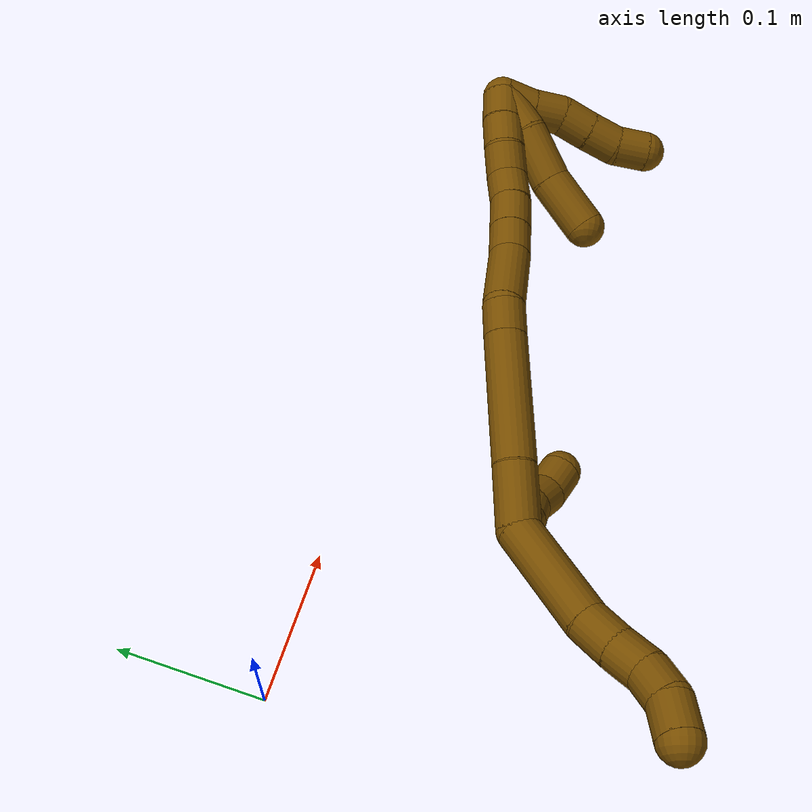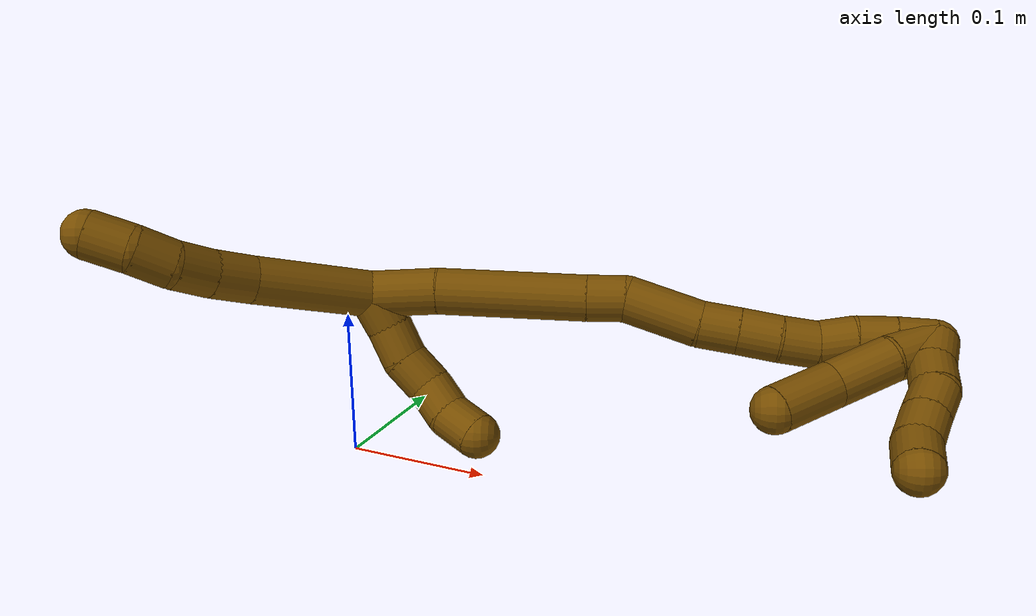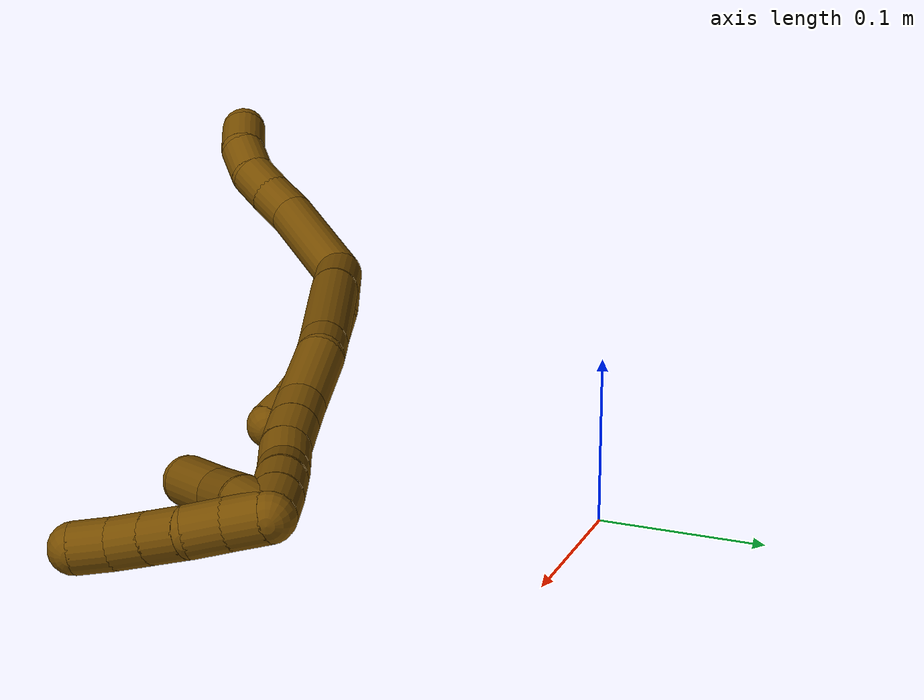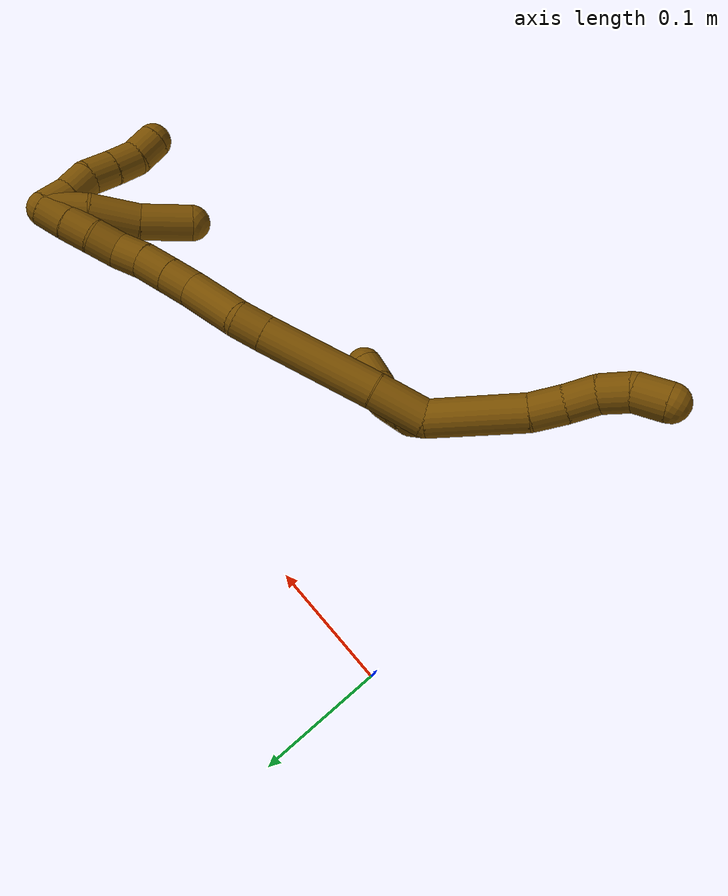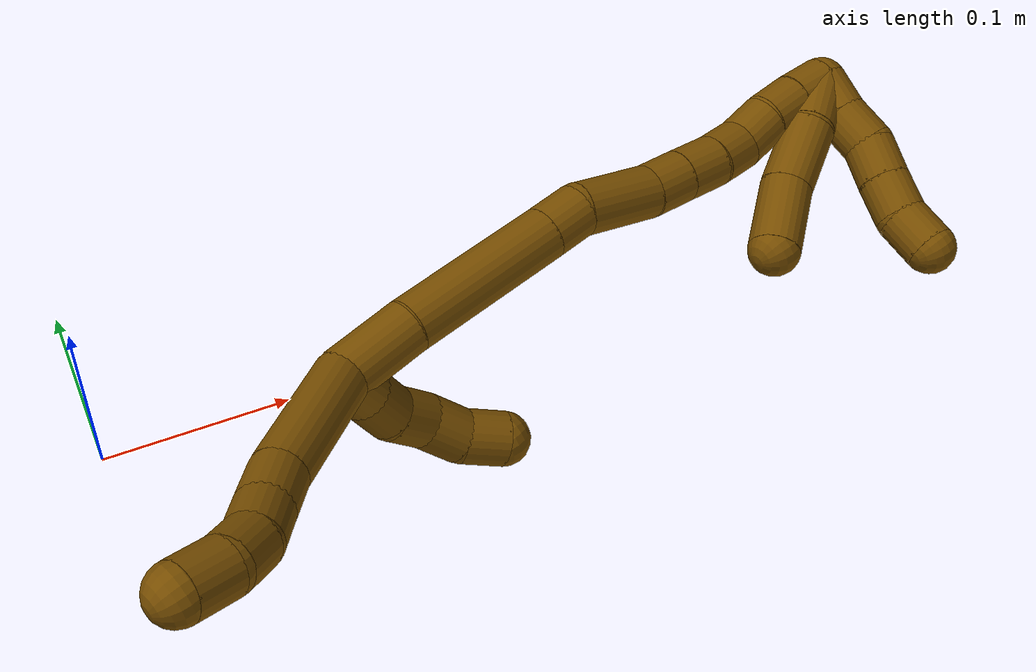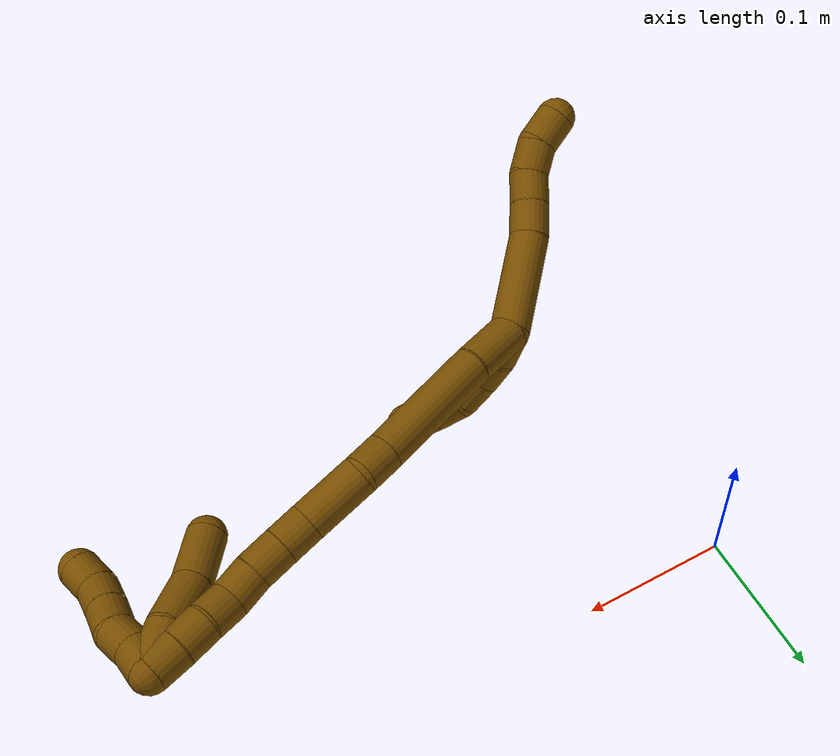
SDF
<sdf version="1.7">
 <world name="default">
  <model name="12">
   <static>0</static>
   <link name="12">
    <collision name="collision-cylinder-e_1_2_8">
     <pose>0.014696 -0.010496 -0.026914 2.76974 0.470593 1.81104</pose>
     <geometry><cylinder><radius>0.0125</radius><length>0.064822</length></cylinder></geometry>
     <surface>
      <friction><ode><mu>1.16</mu><mu2>1.16</mu2><slip1>0</slip1><slip2>0</slip2></ode></friction>
      <contact><ode><kp>1e+06</kp><kd>1</kd><max_vel>0</max_vel><min_depth>0.001</min_depth></ode></contact>
     </surface>
    </collision>
    <visual name="visual-cylinder-e_1_2_8">
     <pose>0.014696 -0.010496 -0.026914 2.76974 0.470593 1.81104</pose>
     <geometry><cylinder><radius>0.0125</radius><length>0.064822</length></cylinder></geometry>
     <material><ambient>0.466667 0.301961 0 1</ambient></material>
    </visual>
    <collision name="collision-cylinder-e_2_8_9">
     <pose>0.035781 -0.025451 -0.061843 2.63392 0.60842 1.7604</pose>
     <geometry><cylinder><radius>0.0125</radius><length>0.022357</length></cylinder></geometry>
     <surface>
      <friction><ode><mu>1.16</mu><mu2>1.16</mu2><slip1>0</slip1><slip2>0</slip2></ode></friction>
      <contact><ode><kp>1e+06</kp><kd>1</kd><max_vel>0</max_vel><min_depth>0.001</min_depth></ode></contact>
     </surface>
    </collision>
    <visual name="visual-cylinder-e_2_8_9">
     <pose>0.035781 -0.025451 -0.061843 2.63392 0.60842 1.7604</pose>
     <geometry><cylinder><radius>0.0125</radius><length>0.022357</length></cylinder></geometry>
     <material><ambient>0.466667 0.301961 0 1</ambient></material>
    </visual>
    <collision name="collision-cylinder-e_3_9_10">
     <pose>0.048049 -0.034836 -0.076683 2.51645 0.609713 1.54414</pose>
     <geometry><cylinder><radius>0.0125</radius><length>0.020532</length></cylinder></geometry>
     <surface>
      <friction><ode><mu>1.16</mu><mu2>1.16</mu2><slip1>0</slip1><slip2>0</slip2></ode></friction>
      <contact><ode><kp>1e+06</kp><kd>1</kd><max_vel>0</max_vel><min_depth>0.001</min_depth></ode></contact>
     </surface>
    </collision>
    <visual name="visual-cylinder-e_3_9_10">
     <pose>0.048049 -0.034836 -0.076683 2.51645 0.609713 1.54414</pose>
     <geometry><cylinder><radius>0.0125</radius><length>0.020532</length></cylinder></geometry>
     <material><ambient>0.466667 0.301961 0 1</ambient></material>
    </visual>
    <collision name="collision-cylinder-e_4_10_11">
     <pose>0.057189 -0.045197 -0.091564 2.548 0.323862 0.981192</pose>
     <geometry><cylinder><radius>0.0125</radius><length>0.020503</length></cylinder></geometry>
     <surface>
      <friction><ode><mu>1.16</mu><mu2>1.16</mu2><slip1>0</slip1><slip2>0</slip2></ode></friction>
      <contact><ode><kp>1e+06</kp><kd>1</kd><max_vel>0</max_vel><min_depth>0.001</min_depth></ode></contact>
     </surface>
    </collision>
    <visual name="visual-cylinder-e_4_10_11">
     <pose>0.057189 -0.045197 -0.091564 2.548 0.323862 0.981192</pose>
     <geometry><cylinder><radius>0.0125</radius><length>0.020503</length></cylinder></geometry>
     <material><ambient>0.466667 0.301961 0 1</ambient></material>
    </visual>
    <collision name="collision-cylinder-e_5_11_6">
     <pose>0.061038 -0.054553 -0.109766 2.77292 0.0538 0.286633</pose>
     <geometry><cylinder><radius>0.0125</radius><length>0.021786</length></cylinder></geometry>
     <surface>
      <friction><ode><mu>1.16</mu><mu2>1.16</mu2><slip1>0</slip1><slip2>0</slip2></ode></friction>
      <contact><ode><kp>1e+06</kp><kd>1</kd><max_vel>0</max_vel><min_depth>0.001</min_depth></ode></contact>
     </surface>
    </collision>
    <visual name="visual-cylinder-e_5_11_6">
     <pose>0.061038 -0.054553 -0.109766 2.77292 0.0538 0.286633</pose>
     <geometry><cylinder><radius>0.0125</radius><length>0.021786</length></cylinder></geometry>
     <material><ambient>0.466667 0.301961 0 1</ambient></material>
    </visual>
    <collision name="collision-cylinder-e_1_2_12">
     <pose>0.001584 0.008772 0.004533 -1.09387 0.15902 -0.096955</pose>
     <geometry><cylinder><radius>0.0125</radius><length>0.02</length></cylinder></geometry>
     <surface>
      <friction><ode><mu>1.16</mu><mu2>1.16</mu2><slip1>0</slip1><slip2>0</slip2></ode></friction>
      <contact><ode><kp>1e+06</kp><kd>1</kd><max_vel>0</max_vel><min_depth>0.001</min_depth></ode></contact>
     </surface>
    </collision>
    <visual name="visual-cylinder-e_1_2_12">
     <pose>0.001584 0.008772 0.004533 -1.09387 0.15902 -0.096955</pose>
     <geometry><cylinder><radius>0.0125</radius><length>0.02</length></cylinder></geometry>
     <material><ambient>0.466667 0.301961 0 1</ambient></material>
    </visual>
    <collision name="collision-cylinder-e_2_12_13">
     <pose>0.006631 0.02586 0.013407 -1.08962 0.353773 -0.215804</pose>
     <geometry><cylinder><radius>0.0125</radius><length>0.02</length></cylinder></geometry>
     <surface>
      <friction><ode><mu>1.16</mu><mu2>1.16</mu2><slip1>0</slip1><slip2>0</slip2></ode></friction>
      <contact><ode><kp>1e+06</kp><kd>1</kd><max_vel>0</max_vel><min_depth>0.001</min_depth></ode></contact>
     </surface>
    </collision>
    <visual name="visual-cylinder-e_2_12_13">
     <pose>0.006631 0.02586 0.013407 -1.08962 0.353773 -0.215804</pose>
     <geometry><cylinder><radius>0.0125</radius><length>0.02</length></cylinder></geometry>
     <material><ambient>0.466667 0.301961 0 1</ambient></material>
    </visual>
    <collision name="collision-cylinder-e_3_13_14">
     <pose>0.013108 0.040752 0.024653 -0.761056 0.306018 -0.123223</pose>
     <geometry><cylinder><radius>0.0125</radius><length>0.02</length></cylinder></geometry>
     <surface>
      <friction><ode><mu>1.16</mu><mu2>1.16</mu2><slip1>0</slip1><slip2>0</slip2></ode></friction>
      <contact><ode><kp>1e+06</kp><kd>1</kd><max_vel>0</max_vel><min_depth>0.001</min_depth></ode></contact>
     </surface>
    </collision>
    <visual name="visual-cylinder-e_3_13_14">
     <pose>0.013108 0.040752 0.024653 -0.761056 0.306018 -0.123223</pose>
     <geometry><cylinder><radius>0.0125</radius><length>0.02</length></cylinder></geometry>
     <material><ambient>0.466667 0.301961 0 1</ambient></material>
    </visual>
    <collision name="collision-cylinder-e_4_14_15">
     <pose>0.022053 0.052743 0.037515 -0.73771 0.635072 -0.252729</pose>
     <geometry><cylinder><radius>0.0125</radius><length>0.02</length></cylinder></geometry>
     <surface>
      <friction><ode><mu>1.16</mu><mu2>1.16</mu2><slip1>0</slip1><slip2>0</slip2></ode></friction>
      <contact><ode><kp>1e+06</kp><kd>1</kd><max_vel>0</max_vel><min_depth>0.001</min_depth></ode></contact>
     </surface>
    </collision>
    <visual name="visual-cylinder-e_4_14_15">
     <pose>0.022053 0.052743 0.037515 -0.73771 0.635072 -0.252729</pose>
     <geometry><cylinder><radius>0.0125</radius><length>0.02</length></cylinder></geometry>
     <material><ambient>0.466667 0.301961 0 1</ambient></material>
    </visual>
    <collision name="collision-cylinder-e_5_15_5">
     <pose>0.033356 0.060914 0.051445 -0.332914 0.566894 -0.097802</pose>
     <geometry><cylinder><radius>0.0125</radius><length>0.02</length></cylinder></geometry>
     <surface>
      <friction><ode><mu>1.16</mu><mu2>1.16</mu2><slip1>0</slip1><slip2>0</slip2></ode></friction>
      <contact><ode><kp>1e+06</kp><kd>1</kd><max_vel>0</max_vel><min_depth>0.001</min_depth></ode></contact>
     </surface>
    </collision>
    <visual name="visual-cylinder-e_5_15_5">
     <pose>0.033356 0.060914 0.051445 -0.332914 0.566894 -0.097802</pose>
     <geometry><cylinder><radius>0.0125</radius><length>0.02</length></cylinder></geometry>
     <material><ambient>0.466667 0.301961 0 1</ambient></material>
    </visual>
    <collision name="collision-cylinder-e_1_2_16">
     <pose>-0.000698 -0.00072 0.018196 0.039533 -0.038332 -0.000758</pose>
     <geometry><cylinder><radius>0.0125</radius><length>0.036447</length></cylinder></geometry>
     <surface>
      <friction><ode><mu>1.16</mu><mu2>1.16</mu2><slip1>0</slip1><slip2>0</slip2></ode></friction>
      <contact><ode><kp>1e+06</kp><kd>1</kd><max_vel>0</max_vel><min_depth>0.001</min_depth></ode></contact>
     </surface>
    </collision>
    <visual name="visual-cylinder-e_1_2_16">
     <pose>-0.000698 -0.00072 0.018196 0.039533 -0.038332 -0.000758</pose>
     <geometry><cylinder><radius>0.0125</radius><length>0.036447</length></cylinder></geometry>
     <material><ambient>0.466667 0.301961 0 1</ambient></material>
    </visual>
    <collision name="collision-cylinder-e_2_16_17">
     <pose>-0.002436 0.000692 0.076222 -0.053456 -0.026059 0.000697</pose>
     <geometry><cylinder><radius>0.0125</radius><length>0.079802</length></cylinder></geometry>
     <surface>
      <friction><ode><mu>1.16</mu><mu2>1.16</mu2><slip1>0</slip1><slip2>0</slip2></ode></friction>
      <contact><ode><kp>1e+06</kp><kd>1</kd><max_vel>0</max_vel><min_depth>0.001</min_depth></ode></contact>
     </surface>
    </collision>
    <visual name="visual-cylinder-e_2_16_17">
     <pose>-0.002436 0.000692 0.076222 -0.053456 -0.026059 0.000697</pose>
     <geometry><cylinder><radius>0.0125</radius><length>0.079802</length></cylinder></geometry>
     <material><ambient>0.466667 0.301961 0 1</ambient></material>
    </visual>
    <collision name="collision-cylinder-e_3_17_18">
     <pose>-0.003667 0.002937 0.126375 -0.011079 -0.018475 0.000102</pose>
     <geometry><cylinder><radius>0.0125</radius><length>0.02065</length></cylinder></geometry>
     <surface>
      <friction><ode><mu>1.16</mu><mu2>1.16</mu2><slip1>0</slip1><slip2>0</slip2></ode></friction>
      <contact><ode><kp>1e+06</kp><kd>1</kd><max_vel>0</max_vel><min_depth>0.001</min_depth></ode></contact>
     </surface>
    </collision>
    <visual name="visual-cylinder-e_3_17_18">
     <pose>-0.003667 0.002937 0.126375 -0.011079 -0.018475 0.000102</pose>
     <geometry><cylinder><radius>0.0125</radius><length>0.02065</length></cylinder></geometry>
     <material><ambient>0.466667 0.301961 0 1</ambient></material>
    </visual>
    <collision name="collision-cylinder-e_4_18_19">
     <pose>-0.000571 0.008683 0.156028 -0.283453 0.161785 -0.023133</pose>
     <geometry><cylinder><radius>0.0125</radius><length>0.040802</length></cylinder></geometry>
     <surface>
      <friction><ode><mu>1.16</mu><mu2>1.16</mu2><slip1>0</slip1><slip2>0</slip2></ode></friction>
      <contact><ode><kp>1e+06</kp><kd>1</kd><max_vel>0</max_vel><min_depth>0.001</min_depth></ode></contact>
     </surface>
    </collision>
    <visual name="visual-cylinder-e_4_18_19">
     <pose>-0.000571 0.008683 0.156028 -0.283453 0.161785 -0.023133</pose>
     <geometry><cylinder><radius>0.0125</radius><length>0.040802</length></cylinder></geometry>
     <material><ambient>0.466667 0.301961 0 1</ambient></material>
    </visual>
    <collision name="collision-cylinder-e_5_19_20">
     <pose>0.003453 0.015829 0.185453 -0.14898 0.072239 -0.005393</pose>
     <geometry><cylinder><radius>0.0125</radius><length>0.020468</length></cylinder></geometry>
     <surface>
      <friction><ode><mu>1.16</mu><mu2>1.16</mu2><slip1>0</slip1><slip2>0</slip2></ode></friction>
      <contact><ode><kp>1e+06</kp><kd>1</kd><max_vel>0</max_vel><min_depth>0.001</min_depth></ode></contact>
     </surface>
    </collision>
    <visual name="visual-cylinder-e_5_19_20">
     <pose>0.003453 0.015829 0.185453 -0.14898 0.072239 -0.005393</pose>
     <geometry><cylinder><radius>0.0125</radius><length>0.020468</length></cylinder></geometry>
     <material><ambient>0.466667 0.301961 0 1</ambient></material>
    </visual>
    <collision name="collision-cylinder-e_6_20_21">
     <pose>0.004989 0.019115 0.206172 -0.165194 0.073858 -0.006117</pose>
     <geometry><cylinder><radius>0.0125</radius><length>0.021602</length></cylinder></geometry>
     <surface>
      <friction><ode><mu>1.16</mu><mu2>1.16</mu2><slip1>0</slip1><slip2>0</slip2></ode></friction>
      <contact><ode><kp>1e+06</kp><kd>1</kd><max_vel>0</max_vel><min_depth>0.001</min_depth></ode></contact>
     </surface>
    </collision>
    <visual name="visual-cylinder-e_6_20_21">
     <pose>0.004989 0.019115 0.206172 -0.165194 0.073858 -0.006117</pose>
     <geometry><cylinder><radius>0.0125</radius><length>0.021602</length></cylinder></geometry>
     <material><ambient>0.466667 0.301961 0 1</ambient></material>
    </visual>
    <collision name="collision-cylinder-e_7_21_22">
     <pose>0.005277 0.022692 0.226671 -0.180858 -0.050707 0.004599</pose>
     <geometry><cylinder><radius>0.0125</radius><length>0.020101</length></cylinder></geometry>
     <surface>
      <friction><ode><mu>1.16</mu><mu2>1.16</mu2><slip1>0</slip1><slip2>0</slip2></ode></friction>
      <contact><ode><kp>1e+06</kp><kd>1</kd><max_vel>0</max_vel><min_depth>0.001</min_depth></ode></contact>
     </surface>
    </collision>
    <visual name="visual-cylinder-e_7_21_22">
     <pose>0.005277 0.022692 0.226671 -0.180858 -0.050707 0.004599</pose>
     <geometry><cylinder><radius>0.0125</radius><length>0.020101</length></cylinder></geometry>
     <material><ambient>0.466667 0.301961 0 1</ambient></material>
    </visual>
    <collision name="collision-cylinder-e_8_22_23">
     <pose>0.003937 0.023184 0.246448 0.131824 -0.082955 -0.005479</pose>
     <geometry><cylinder><radius>0.0125</radius><length>0.020049</length></cylinder></geometry>
     <surface>
      <friction><ode><mu>1.16</mu><mu2>1.16</mu2><slip1>0</slip1><slip2>0</slip2></ode></friction>
      <contact><ode><kp>1e+06</kp><kd>1</kd><max_vel>0</max_vel><min_depth>0.001</min_depth></ode></contact>
     </surface>
    </collision>
    <visual name="visual-cylinder-e_8_22_23">
     <pose>0.003937 0.023184 0.246448 0.131824 -0.082955 -0.005479</pose>
     <geometry><cylinder><radius>0.0125</radius><length>0.020049</length></cylinder></geometry>
     <material><ambient>0.466667 0.301961 0 1</ambient></material>
    </visual>
    <collision name="collision-cylinder-e_9_23_24">
     <pose>0.002861 0.022116 0.266352 -0.024515 -0.024484 0.0003</pose>
     <geometry><cylinder><radius>0.0125</radius><length>0.020013</length></cylinder></geometry>
     <surface>
      <friction><ode><mu>1.16</mu><mu2>1.16</mu2><slip1>0</slip1><slip2>0</slip2></ode></friction>
      <contact><ode><kp>1e+06</kp><kd>1</kd><max_vel>0</max_vel><min_depth>0.001</min_depth></ode></contact>
     </surface>
    </collision>
    <visual name="visual-cylinder-e_9_23_24">
     <pose>0.002861 0.022116 0.266352 -0.024515 -0.024484 0.0003</pose>
     <geometry><cylinder><radius>0.0125</radius><length>0.020013</length></cylinder></geometry>
     <material><ambient>0.466667 0.301961 0 1</ambient></material>
    </visual>
    <collision name="collision-cylinder-e_10_24_1">
     <pose>0.003022 0.022875 0.286365 -0.051255 0.040503 -0.001038</pose>
     <geometry><cylinder><radius>0.0125</radius><length>0.020067</length></cylinder></geometry>
     <surface>
      <friction><ode><mu>1.16</mu><mu2>1.16</mu2><slip1>0</slip1><slip2>0</slip2></ode></friction>
      <contact><ode><kp>1e+06</kp><kd>1</kd><max_vel>0</max_vel><min_depth>0.001</min_depth></ode></contact>
     </surface>
    </collision>
    <visual name="visual-cylinder-e_10_24_1">
     <pose>0.003022 0.022875 0.286365 -0.051255 0.040503 -0.001038</pose>
     <geometry><cylinder><radius>0.0125</radius><length>0.020067</length></cylinder></geometry>
     <material><ambient>0.466667 0.301961 0 1</ambient></material>
    </visual>
    <collision name="collision-cylinder-e_1_1_25">
     <pose>0.012941 0.025378 0.29402 -2.4408 1.25724 -2.20995</pose>
     <geometry><cylinder><radius>0.0125</radius><length>0.02</length></cylinder></geometry>
     <surface>
      <friction><ode><mu>1.16</mu><mu2>1.16</mu2><slip1>0</slip1><slip2>0</slip2></ode></friction>
      <contact><ode><kp>1e+06</kp><kd>1</kd><max_vel>0</max_vel><min_depth>0.001</min_depth></ode></contact>
     </surface>
    </collision>
    <visual name="visual-cylinder-e_1_1_25">
     <pose>0.012941 0.025378 0.29402 -2.4408 1.25724 -2.20995</pose>
     <geometry><cylinder><radius>0.0125</radius><length>0.02</length></cylinder></geometry>
     <material><ambient>0.466667 0.301961 0 1</ambient></material>
    </visual>
    <collision name="collision-cylinder-e_2_25_26">
     <pose>0.032319 0.028871 0.291017 -1.97614 1.40634 -1.8199</pose>
     <geometry><cylinder><radius>0.0125</radius><length>0.02</length></cylinder></geometry>
     <surface>
      <friction><ode><mu>1.16</mu><mu2>1.16</mu2><slip1>0</slip1><slip2>0</slip2></ode></friction>
      <contact><ode><kp>1e+06</kp><kd>1</kd><max_vel>0</max_vel><min_depth>0.001</min_depth></ode></contact>
     </surface>
    </collision>
    <visual name="visual-cylinder-e_2_25_26">
     <pose>0.032319 0.028871 0.291017 -1.97614 1.40634 -1.8199</pose>
     <geometry><cylinder><radius>0.0125</radius><length>0.02</length></cylinder></geometry>
     <material><ambient>0.466667 0.301961 0 1</ambient></material>
    </visual>
    <collision name="collision-cylinder-e_3_26_27">
     <pose>0.051163 0.032576 0.286558 -2.61833 1.11496 -2.33025</pose>
     <geometry><cylinder><radius>0.0125</radius><length>0.02</length></cylinder></geometry>
     <surface>
      <friction><ode><mu>1.16</mu><mu2>1.16</mu2><slip1>0</slip1><slip2>0</slip2></ode></friction>
      <contact><ode><kp>1e+06</kp><kd>1</kd><max_vel>0</max_vel><min_depth>0.001</min_depth></ode></contact>
     </surface>
    </collision>
    <visual name="visual-cylinder-e_3_26_27">
     <pose>0.051163 0.032576 0.286558 -2.61833 1.11496 -2.33025</pose>
     <geometry><cylinder><radius>0.0125</radius><length>0.02</length></cylinder></geometry>
     <material><ambient>0.466667 0.301961 0 1</ambient></material>
    </visual>
    <collision name="collision-cylinder-e_4_27_28">
     <pose>0.0693 0.036862 0.279315 -2.59489 1.15772 -2.33108</pose>
     <geometry><cylinder><radius>0.0125</radius><length>0.02</length></cylinder></geometry>
     <surface>
      <friction><ode><mu>1.16</mu><mu2>1.16</mu2><slip1>0</slip1><slip2>0</slip2></ode></friction>
      <contact><ode><kp>1e+06</kp><kd>1</kd><max_vel>0</max_vel><min_depth>0.001</min_depth></ode></contact>
     </surface>
    </collision>
    <visual name="visual-cylinder-e_4_27_28">
     <pose>0.0693 0.036862 0.279315 -2.59489 1.15772 -2.33108</pose>
     <geometry><cylinder><radius>0.0125</radius><length>0.02</length></cylinder></geometry>
     <material><ambient>0.466667 0.301961 0 1</ambient></material>
    </visual>
    <collision name="collision-cylinder-e_5_28_4">
     <pose>0.088375 0.039714 0.274838 -2.5115 1.44071 -2.43052</pose>
     <geometry><cylinder><radius>0.0125</radius><length>0.02</length></cylinder></geometry>
     <surface>
      <friction><ode><mu>1.16</mu><mu2>1.16</mu2><slip1>0</slip1><slip2>0</slip2></ode></friction>
      <contact><ode><kp>1e+06</kp><kd>1</kd><max_vel>0</max_vel><min_depth>0.001</min_depth></ode></contact>
     </surface>
    </collision>
    <visual name="visual-cylinder-e_5_28_4">
     <pose>0.088375 0.039714 0.274838 -2.5115 1.44071 -2.43052</pose>
     <geometry><cylinder><radius>0.0125</radius><length>0.02</length></cylinder></geometry>
     <material><ambient>0.466667 0.301961 0 1</ambient></material>
    </visual>
    <collision name="collision-cylinder-e_1_1_29">
     <pose>0.011032 0.024216 0.283985 -3.07498 0.549319 -2.90621</pose>
     <geometry><cylinder><radius>0.0125</radius><length>0.029125</length></cylinder></geometry>
     <surface>
      <friction><ode><mu>1.16</mu><mu2>1.16</mu2><slip1>0</slip1><slip2>0</slip2></ode></friction>
      <contact><ode><kp>1e+06</kp><kd>1</kd><max_vel>0</max_vel><min_depth>0.001</min_depth></ode></contact>
     </surface>
    </collision>
    <visual name="visual-cylinder-e_1_1_29">
     <pose>0.011032 0.024216 0.283985 -3.07498 0.549319 -2.90621</pose>
     <geometry><cylinder><radius>0.0125</radius><length>0.029125</length></cylinder></geometry>
     <material><ambient>0.466667 0.301961 0 1</ambient></material>
    </visual>
    <collision name="collision-cylinder-e_2_29_30">
     <pose>0.026357 0.028646 0.25632 -2.90989 0.457343 -2.21428</pose>
     <geometry><cylinder><radius>0.0125</radius><length>0.034978</length></cylinder></geometry>
     <surface>
      <friction><ode><mu>1.16</mu><mu2>1.16</mu2><slip1>0</slip1><slip2>0</slip2></ode></friction>
      <contact><ode><kp>1e+06</kp><kd>1</kd><max_vel>0</max_vel><min_depth>0.001</min_depth></ode></contact>
     </surface>
    </collision>
    <visual name="visual-cylinder-e_2_29_30">
     <pose>0.026357 0.028646 0.25632 -2.90989 0.457343 -2.21428</pose>
     <geometry><cylinder><radius>0.0125</radius><length>0.034978</length></cylinder></geometry>
     <material><ambient>0.466667 0.301961 0 1</ambient></material>
    </visual>
    <collision name="collision-cylinder-e_3_30_3">
     <pose>0.044343 0.033835 0.226409 -3.03367 0.608723 -2.801</pose>
     <geometry><cylinder><radius>0.0125</radius><length>0.035897</length></cylinder></geometry>
     <surface>
      <friction><ode><mu>1.16</mu><mu2>1.16</mu2><slip1>0</slip1><slip2>0</slip2></ode></friction>
      <contact><ode><kp>1e+06</kp><kd>1</kd><max_vel>0</max_vel><min_depth>0.001</min_depth></ode></contact>
     </surface>
    </collision>
    <visual name="visual-cylinder-e_3_30_3">
     <pose>0.044343 0.033835 0.226409 -3.03367 0.608723 -2.801</pose>
     <geometry><cylinder><radius>0.0125</radius><length>0.035897</length></cylinder></geometry>
     <material><ambient>0.466667 0.301961 0 1</ambient></material>
    </visual>
    <collision name="collision-sphere-3">
     <pose>0.054607 0.035421 0.21177 0 -0 0</pose>
     <geometry><sphere><radius>0.0125</radius></sphere></geometry>
     <surface>
      <friction><ode><mu>1.16</mu><mu2>1.16</mu2><slip1>0</slip1><slip2>0</slip2></ode></friction>
      <contact><ode><kp>1e+06</kp><kd>1</kd><max_vel>0</max_vel><min_depth>0.001</min_depth></ode></contact>
     </surface>
    </collision>
    <visual name="visual-sphere-3">
     <pose>0.054607 0.035421 0.21177 0 -0 0</pose>
     <geometry><sphere><radius>0.0125</radius></sphere></geometry>
     <material><ambient>0.466667 0.301961 0 1</ambient></material>
    </visual>
    <collision name="collision-sphere-30">
     <pose>0.03408 0.032249 0.241048 0 -0 0</pose>
     <geometry><sphere><radius>0.0125</radius></sphere></geometry>
     <surface>
      <friction><ode><mu>1.16</mu><mu2>1.16</mu2><slip1>0</slip1><slip2>0</slip2></ode></friction>
      <contact><ode><kp>1e+06</kp><kd>1</kd><max_vel>0</max_vel><min_depth>0.001</min_depth></ode></contact>
     </surface>
    </collision>
    <visual name="visual-sphere-30">
     <pose>0.03408 0.032249 0.241048 0 -0 0</pose>
     <geometry><sphere><radius>0.0125</radius></sphere></geometry>
     <material><ambient>0.466667 0.301961 0 1</ambient></material>
    </visual>
    <collision name="collision-sphere-29">
     <pose>0.018635 0.025042 0.271592 0 -0 0</pose>
     <geometry><sphere><radius>0.0125</radius></sphere></geometry>
     <surface>
      <friction><ode><mu>1.16</mu><mu2>1.16</mu2><slip1>0</slip1><slip2>0</slip2></ode></friction>
      <contact><ode><kp>1e+06</kp><kd>1</kd><max_vel>0</max_vel><min_depth>0.001</min_depth></ode></contact>
     </surface>
    </collision>
    <visual name="visual-sphere-29">
     <pose>0.018635 0.025042 0.271592 0 -0 0</pose>
     <geometry><sphere><radius>0.0125</radius></sphere></geometry>
     <material><ambient>0.466667 0.301961 0 1</ambient></material>
    </visual>
    <collision name="collision-sphere-4">
     <pose>0.09829 0.040478 0.27379 0 -0 0</pose>
     <geometry><sphere><radius>0.0125</radius></sphere></geometry>
     <surface>
      <friction><ode><mu>1.16</mu><mu2>1.16</mu2><slip1>0</slip1><slip2>0</slip2></ode></friction>
      <contact><ode><kp>1e+06</kp><kd>1</kd><max_vel>0</max_vel><min_depth>0.001</min_depth></ode></contact>
     </surface>
    </collision>
    <visual name="visual-sphere-4">
     <pose>0.09829 0.040478 0.27379 0 -0 0</pose>
     <geometry><sphere><radius>0.0125</radius></sphere></geometry>
     <material><ambient>0.466667 0.301961 0 1</ambient></material>
    </visual>
    <collision name="collision-sphere-28">
     <pose>0.078459 0.038949 0.275886 0 -0 0</pose>
     <geometry><sphere><radius>0.0125</radius></sphere></geometry>
     <surface>
      <friction><ode><mu>1.16</mu><mu2>1.16</mu2><slip1>0</slip1><slip2>0</slip2></ode></friction>
      <contact><ode><kp>1e+06</kp><kd>1</kd><max_vel>0</max_vel><min_depth>0.001</min_depth></ode></contact>
     </surface>
    </collision>
    <visual name="visual-sphere-28">
     <pose>0.078459 0.038949 0.275886 0 -0 0</pose>
     <geometry><sphere><radius>0.0125</radius></sphere></geometry>
     <material><ambient>0.466667 0.301961 0 1</ambient></material>
    </visual>
    <collision name="collision-sphere-27">
     <pose>0.060141 0.034775 0.282745 0 -0 0</pose>
     <geometry><sphere><radius>0.0125</radius></sphere></geometry>
     <surface>
      <friction><ode><mu>1.16</mu><mu2>1.16</mu2><slip1>0</slip1><slip2>0</slip2></ode></friction>
      <contact><ode><kp>1e+06</kp><kd>1</kd><max_vel>0</max_vel><min_depth>0.001</min_depth></ode></contact>
     </surface>
    </collision>
    <visual name="visual-sphere-27">
     <pose>0.060141 0.034775 0.282745 0 -0 0</pose>
     <geometry><sphere><radius>0.0125</radius></sphere></geometry>
     <material><ambient>0.466667 0.301961 0 1</ambient></material>
    </visual>
    <collision name="collision-sphere-26">
     <pose>0.042184 0.030376 0.290371 0 -0 0</pose>
     <geometry><sphere><radius>0.0125</radius></sphere></geometry>
     <surface>
      <friction><ode><mu>1.16</mu><mu2>1.16</mu2><slip1>0</slip1><slip2>0</slip2></ode></friction>
      <contact><ode><kp>1e+06</kp><kd>1</kd><max_vel>0</max_vel><min_depth>0.001</min_depth></ode></contact>
     </surface>
    </collision>
    <visual name="visual-sphere-26">
     <pose>0.042184 0.030376 0.290371 0 -0 0</pose>
     <geometry><sphere><radius>0.0125</radius></sphere></geometry>
     <material><ambient>0.466667 0.301961 0 1</ambient></material>
    </visual>
    <collision name="collision-sphere-25">
     <pose>0.022453 0.027367 0.291662 0 -0 0</pose>
     <geometry><sphere><radius>0.0125</radius></sphere></geometry>
     <surface>
      <friction><ode><mu>1.16</mu><mu2>1.16</mu2><slip1>0</slip1><slip2>0</slip2></ode></friction>
      <contact><ode><kp>1e+06</kp><kd>1</kd><max_vel>0</max_vel><min_depth>0.001</min_depth></ode></contact>
     </surface>
    </collision>
    <visual name="visual-sphere-25">
     <pose>0.022453 0.027367 0.291662 0 -0 0</pose>
     <geometry><sphere><radius>0.0125</radius></sphere></geometry>
     <material><ambient>0.466667 0.301961 0 1</ambient></material>
    </visual>
    <collision name="collision-sphere-1">
     <pose>0.003429 0.023389 0.296377 0 -0 0</pose>
     <geometry><sphere><radius>0.0125</radius></sphere></geometry>
     <surface>
      <friction><ode><mu>1.16</mu><mu2>1.16</mu2><slip1>0</slip1><slip2>0</slip2></ode></friction>
      <contact><ode><kp>1e+06</kp><kd>1</kd><max_vel>0</max_vel><min_depth>0.001</min_depth></ode></contact>
     </surface>
    </collision>
    <visual name="visual-sphere-1">
     <pose>0.003429 0.023389 0.296377 0 -0 0</pose>
     <geometry><sphere><radius>0.0125</radius></sphere></geometry>
     <material><ambient>0.466667 0.301961 0 1</ambient></material>
    </visual>
    <collision name="collision-sphere-24">
     <pose>0.002616 0.022362 0.276353 0 -0 0</pose>
     <geometry><sphere><radius>0.0125</radius></sphere></geometry>
     <surface>
      <friction><ode><mu>1.16</mu><mu2>1.16</mu2><slip1>0</slip1><slip2>0</slip2></ode></friction>
      <contact><ode><kp>1e+06</kp><kd>1</kd><max_vel>0</max_vel><min_depth>0.001</min_depth></ode></contact>
     </surface>
    </collision>
    <visual name="visual-sphere-24">
     <pose>0.002616 0.022362 0.276353 0 -0 0</pose>
     <geometry><sphere><radius>0.0125</radius></sphere></geometry>
     <material><ambient>0.466667 0.301961 0 1</ambient></material>
    </visual>
    <collision name="collision-sphere-23">
     <pose>0.003106 0.021871 0.256352 0 -0 0</pose>
     <geometry><sphere><radius>0.0125</radius></sphere></geometry>
     <surface>
      <friction><ode><mu>1.16</mu><mu2>1.16</mu2><slip1>0</slip1><slip2>0</slip2></ode></friction>
      <contact><ode><kp>1e+06</kp><kd>1</kd><max_vel>0</max_vel><min_depth>0.001</min_depth></ode></contact>
     </surface>
    </collision>
    <visual name="visual-sphere-23">
     <pose>0.003106 0.021871 0.256352 0 -0 0</pose>
     <geometry><sphere><radius>0.0125</radius></sphere></geometry>
     <material><ambient>0.466667 0.301961 0 1</ambient></material>
    </visual>
    <collision name="collision-sphere-22">
     <pose>0.004767 0.024497 0.236545 0 -0 0</pose>
     <geometry><sphere><radius>0.0125</radius></sphere></geometry>
     <surface>
      <friction><ode><mu>1.16</mu><mu2>1.16</mu2><slip1>0</slip1><slip2>0</slip2></ode></friction>
      <contact><ode><kp>1e+06</kp><kd>1</kd><max_vel>0</max_vel><min_depth>0.001</min_depth></ode></contact>
     </surface>
    </collision>
    <visual name="visual-sphere-22">
     <pose>0.004767 0.024497 0.236545 0 -0 0</pose>
     <geometry><sphere><radius>0.0125</radius></sphere></geometry>
     <material><ambient>0.466667 0.301961 0 1</ambient></material>
    </visual>
    <collision name="collision-sphere-21">
     <pose>0.005786 0.020886 0.216797 0 -0 0</pose>
     <geometry><sphere><radius>0.0125</radius></sphere></geometry>
     <surface>
      <friction><ode><mu>1.16</mu><mu2>1.16</mu2><slip1>0</slip1><slip2>0</slip2></ode></friction>
      <contact><ode><kp>1e+06</kp><kd>1</kd><max_vel>0</max_vel><min_depth>0.001</min_depth></ode></contact>
     </surface>
    </collision>
    <visual name="visual-sphere-21">
     <pose>0.005786 0.020886 0.216797 0 -0 0</pose>
     <geometry><sphere><radius>0.0125</radius></sphere></geometry>
     <material><ambient>0.466667 0.301961 0 1</ambient></material>
    </visual>
    <collision name="collision-sphere-6">
     <pose>0.061623 -0.058473 -0.119913 0 -0 0</pose>
     <geometry><sphere><radius>0.0125</radius></sphere></geometry>
     <surface>
      <friction><ode><mu>1.16</mu><mu2>1.16</mu2><slip1>0</slip1><slip2>0</slip2></ode></friction>
      <contact><ode><kp>1e+06</kp><kd>1</kd><max_vel>0</max_vel><min_depth>0.001</min_depth></ode></contact>
     </surface>
    </collision>
    <visual name="visual-sphere-6">
     <pose>0.061623 -0.058473 -0.119913 0 -0 0</pose>
     <geometry><sphere><radius>0.0125</radius></sphere></geometry>
     <material><ambient>0.466667 0.301961 0 1</ambient></material>
    </visual>
    <collision name="collision-sphere-11">
     <pose>0.060452 -0.050633 -0.09962 0 -0 0</pose>
     <geometry><sphere><radius>0.0125</radius></sphere></geometry>
     <surface>
      <friction><ode><mu>1.16</mu><mu2>1.16</mu2><slip1>0</slip1><slip2>0</slip2></ode></friction>
      <contact><ode><kp>1e+06</kp><kd>1</kd><max_vel>0</max_vel><min_depth>0.001</min_depth></ode></contact>
     </surface>
    </collision>
    <visual name="visual-sphere-11">
     <pose>0.060452 -0.050633 -0.09962 0 -0 0</pose>
     <geometry><sphere><radius>0.0125</radius></sphere></geometry>
     <material><ambient>0.466667 0.301961 0 1</ambient></material>
    </visual>
    <collision name="collision-sphere-10">
     <pose>0.053927 -0.039761 -0.083508 0 -0 0</pose>
     <geometry><sphere><radius>0.0125</radius></sphere></geometry>
     <surface>
      <friction><ode><mu>1.16</mu><mu2>1.16</mu2><slip1>0</slip1><slip2>0</slip2></ode></friction>
      <contact><ode><kp>1e+06</kp><kd>1</kd><max_vel>0</max_vel><min_depth>0.001</min_depth></ode></contact>
     </surface>
    </collision>
    <visual name="visual-sphere-10">
     <pose>0.053927 -0.039761 -0.083508 0 -0 0</pose>
     <geometry><sphere><radius>0.0125</radius></sphere></geometry>
     <material><ambient>0.466667 0.301961 0 1</ambient></material>
    </visual>
    <collision name="collision-sphere-9">
     <pose>0.04217 -0.029911 -0.069859 0 -0 0</pose>
     <geometry><sphere><radius>0.0125</radius></sphere></geometry>
     <surface>
      <friction><ode><mu>1.16</mu><mu2>1.16</mu2><slip1>0</slip1><slip2>0</slip2></ode></friction>
      <contact><ode><kp>1e+06</kp><kd>1</kd><max_vel>0</max_vel><min_depth>0.001</min_depth></ode></contact>
     </surface>
    </collision>
    <visual name="visual-sphere-9">
     <pose>0.04217 -0.029911 -0.069859 0 -0 0</pose>
     <geometry><sphere><radius>0.0125</radius></sphere></geometry>
     <material><ambient>0.466667 0.301961 0 1</ambient></material>
    </visual>
    <collision name="collision-sphere-2">
     <geometry><sphere><radius>0.0125</radius></sphere></geometry>
     <surface>
      <friction><ode><mu>1.16</mu><mu2>1.16</mu2><slip1>0</slip1><slip2>0</slip2></ode></friction>
      <contact><ode><kp>1e+06</kp><kd>1</kd><max_vel>0</max_vel><min_depth>0.001</min_depth></ode></contact>
     </surface>
    </collision>
    <visual name="visual-sphere-2">
     <geometry><sphere><radius>0.0125</radius></sphere></geometry>
     <material><ambient>0.466667 0.301961 0 1</ambient></material>
    </visual>
    <collision name="collision-sphere-19">
     <pose>0.002715 0.014314 0.175359 0 -0 0</pose>
     <geometry><sphere><radius>0.0125</radius></sphere></geometry>
     <surface>
      <friction><ode><mu>1.16</mu><mu2>1.16</mu2><slip1>0</slip1><slip2>0</slip2></ode></friction>
      <contact><ode><kp>1e+06</kp><kd>1</kd><max_vel>0</max_vel><min_depth>0.001</min_depth></ode></contact>
     </surface>
    </collision>
    <visual name="visual-sphere-19">
     <pose>0.002715 0.014314 0.175359 0 -0 0</pose>
     <geometry><sphere><radius>0.0125</radius></sphere></geometry>
     <material><ambient>0.466667 0.301961 0 1</ambient></material>
    </visual>
    <collision name="collision-sphere-8">
     <pose>0.029391 -0.020992 -0.053827 0 -0 0</pose>
     <geometry><sphere><radius>0.0125</radius></sphere></geometry>
     <surface>
      <friction><ode><mu>1.16</mu><mu2>1.16</mu2><slip1>0</slip1><slip2>0</slip2></ode></friction>
      <contact><ode><kp>1e+06</kp><kd>1</kd><max_vel>0</max_vel><min_depth>0.001</min_depth></ode></contact>
     </surface>
    </collision>
    <visual name="visual-sphere-8">
     <pose>0.029391 -0.020992 -0.053827 0 -0 0</pose>
     <geometry><sphere><radius>0.0125</radius></sphere></geometry>
     <material><ambient>0.466667 0.301961 0 1</ambient></material>
    </visual>
    <collision name="collision-sphere-12">
     <pose>0.003167 0.017544 0.009065 0 -0 0</pose>
     <geometry><sphere><radius>0.0125</radius></sphere></geometry>
     <surface>
      <friction><ode><mu>1.16</mu><mu2>1.16</mu2><slip1>0</slip1><slip2>0</slip2></ode></friction>
      <contact><ode><kp>1e+06</kp><kd>1</kd><max_vel>0</max_vel><min_depth>0.001</min_depth></ode></contact>
     </surface>
    </collision>
    <visual name="visual-sphere-12">
     <pose>0.003167 0.017544 0.009065 0 -0 0</pose>
     <geometry><sphere><radius>0.0125</radius></sphere></geometry>
     <material><ambient>0.466667 0.301961 0 1</ambient></material>
    </visual>
    <collision name="collision-sphere-13">
     <pose>0.010096 0.034175 0.017748 0 -0 0</pose>
     <geometry><sphere><radius>0.0125</radius></sphere></geometry>
     <surface>
      <friction><ode><mu>1.16</mu><mu2>1.16</mu2><slip1>0</slip1><slip2>0</slip2></ode></friction>
      <contact><ode><kp>1e+06</kp><kd>1</kd><max_vel>0</max_vel><min_depth>0.001</min_depth></ode></contact>
     </surface>
    </collision>
    <visual name="visual-sphere-13">
     <pose>0.010096 0.034175 0.017748 0 -0 0</pose>
     <geometry><sphere><radius>0.0125</radius></sphere></geometry>
     <material><ambient>0.466667 0.301961 0 1</ambient></material>
    </visual>
    <collision name="collision-sphere-14">
     <pose>0.016121 0.047328 0.031558 0 -0 0</pose>
     <geometry><sphere><radius>0.0125</radius></sphere></geometry>
     <surface>
      <friction><ode><mu>1.16</mu><mu2>1.16</mu2><slip1>0</slip1><slip2>0</slip2></ode></friction>
      <contact><ode><kp>1e+06</kp><kd>1</kd><max_vel>0</max_vel><min_depth>0.001</min_depth></ode></contact>
     </surface>
    </collision>
    <visual name="visual-sphere-14">
     <pose>0.016121 0.047328 0.031558 0 -0 0</pose>
     <geometry><sphere><radius>0.0125</radius></sphere></geometry>
     <material><ambient>0.466667 0.301961 0 1</ambient></material>
    </visual>
    <collision name="collision-sphere-15">
     <pose>0.027986 0.058157 0.043472 0 -0 0</pose>
     <geometry><sphere><radius>0.0125</radius></sphere></geometry>
     <surface>
      <friction><ode><mu>1.16</mu><mu2>1.16</mu2><slip1>0</slip1><slip2>0</slip2></ode></friction>
      <contact><ode><kp>1e+06</kp><kd>1</kd><max_vel>0</max_vel><min_depth>0.001</min_depth></ode></contact>
     </surface>
    </collision>
    <visual name="visual-sphere-15">
     <pose>0.027986 0.058157 0.043472 0 -0 0</pose>
     <geometry><sphere><radius>0.0125</radius></sphere></geometry>
     <material><ambient>0.466667 0.301961 0 1</ambient></material>
    </visual>
    <collision name="collision-sphere-5">
     <pose>0.038726 0.063671 0.059417 0 -0 0</pose>
     <geometry><sphere><radius>0.0125</radius></sphere></geometry>
     <surface>
      <friction><ode><mu>1.16</mu><mu2>1.16</mu2><slip1>0</slip1><slip2>0</slip2></ode></friction>
      <contact><ode><kp>1e+06</kp><kd>1</kd><max_vel>0</max_vel><min_depth>0.001</min_depth></ode></contact>
     </surface>
    </collision>
    <visual name="visual-sphere-5">
     <pose>0.038726 0.063671 0.059417 0 -0 0</pose>
     <geometry><sphere><radius>0.0125</radius></sphere></geometry>
     <material><ambient>0.466667 0.301961 0 1</ambient></material>
    </visual>
    <collision name="collision-sphere-16">
     <pose>-0.001397 -0.001439 0.036392 0 -0 0</pose>
     <geometry><sphere><radius>0.0125</radius></sphere></geometry>
     <surface>
      <friction><ode><mu>1.16</mu><mu2>1.16</mu2><slip1>0</slip1><slip2>0</slip2></ode></friction>
      <contact><ode><kp>1e+06</kp><kd>1</kd><max_vel>0</max_vel><min_depth>0.001</min_depth></ode></contact>
     </surface>
    </collision>
    <visual name="visual-sphere-16">
     <pose>-0.001397 -0.001439 0.036392 0 -0 0</pose>
     <geometry><sphere><radius>0.0125</radius></sphere></geometry>
     <material><ambient>0.466667 0.301961 0 1</ambient></material>
    </visual>
    <collision name="collision-sphere-17">
     <pose>-0.003476 0.002823 0.116052 0 -0 0</pose>
     <geometry><sphere><radius>0.0125</radius></sphere></geometry>
     <surface>
      <friction><ode><mu>1.16</mu><mu2>1.16</mu2><slip1>0</slip1><slip2>0</slip2></ode></friction>
      <contact><ode><kp>1e+06</kp><kd>1</kd><max_vel>0</max_vel><min_depth>0.001</min_depth></ode></contact>
     </surface>
    </collision>
    <visual name="visual-sphere-17">
     <pose>-0.003476 0.002823 0.116052 0 -0 0</pose>
     <geometry><sphere><radius>0.0125</radius></sphere></geometry>
     <material><ambient>0.466667 0.301961 0 1</ambient></material>
    </visual>
    <collision name="collision-sphere-18">
     <pose>-0.003858 0.003052 0.136697 0 -0 0</pose>
     <geometry><sphere><radius>0.0125</radius></sphere></geometry>
     <surface>
      <friction><ode><mu>1.16</mu><mu2>1.16</mu2><slip1>0</slip1><slip2>0</slip2></ode></friction>
      <contact><ode><kp>1e+06</kp><kd>1</kd><max_vel>0</max_vel><min_depth>0.001</min_depth></ode></contact>
     </surface>
    </collision>
    <visual name="visual-sphere-18">
     <pose>-0.003858 0.003052 0.136697 0 -0 0</pose>
     <geometry><sphere><radius>0.0125</radius></sphere></geometry>
     <material><ambient>0.466667 0.301961 0 1</ambient></material>
    </visual>
    <collision name="collision-sphere-20">
     <pose>0.004192 0.017344 0.195548 0 -0 0</pose>
     <geometry><sphere><radius>0.0125</radius></sphere></geometry>
     <surface>
      <friction><ode><mu>1.16</mu><mu2>1.16</mu2><slip1>0</slip1><slip2>0</slip2></ode></friction>
      <contact><ode><kp>1e+06</kp><kd>1</kd><max_vel>0</max_vel><min_depth>0.001</min_depth></ode></contact>
     </surface>
    </collision>
    <visual name="visual-sphere-20">
     <pose>0.004192 0.017344 0.195548 0 -0 0</pose>
     <geometry><sphere><radius>0.0125</radius></sphere></geometry>
     <material><ambient>0.466667 0.301961 0 1</ambient></material>
    </visual>
    <inertial>
     <pose>0.019807 0.011859 0.12278 0 -0 0</pose>
     <mass>0.75</mass>
     <inertia>
      <ixx>9.9e-05</ixx>
      <ixy>0</ixy>
      <ixz>0</ixz>
      <iyy>0.000123</iyy>
      <iyz>0</iyz>
      <izz>-2.2e-05</izz>
     </inertia>
    </inertial>
   </link>
   <pose>0.096323 -0.12111 0.166343 -1.54384 0.103072 -1.24435</pose>
  </model>
 </world>
</sdf>
